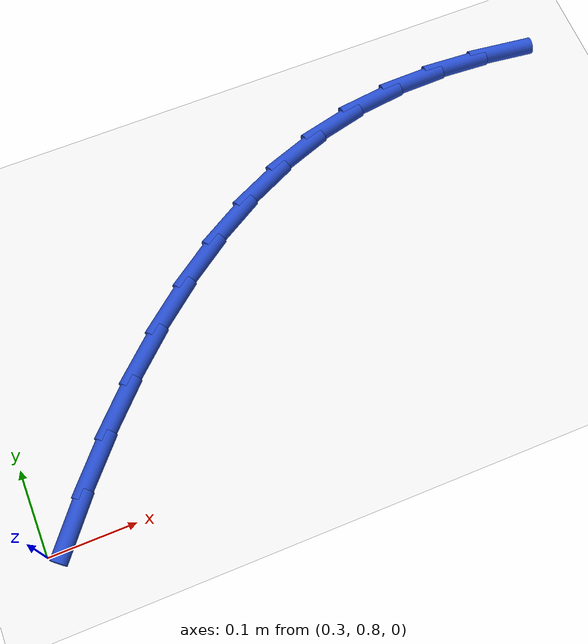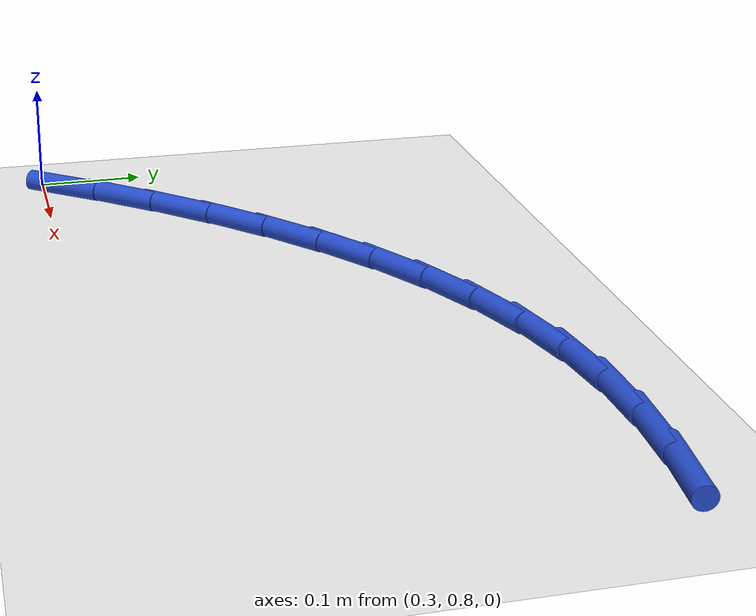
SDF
<sdf version="1.6">
 <world name="default">
  <model name="ground_plane">
   <static>1</static>
   <link name="link">
    <collision name="collision">
     <geometry><plane><normal>0 0 1</normal><size>100 100</size></plane></geometry>
     <surface><friction><ode><mu>100</mu><mu2>50</mu2></ode></friction></surface>
    </collision>
    <visual name="visual">
     <cast_shadows>0</cast_shadows>
     <geometry><plane><normal>0 0 1</normal><size>100 100</size></plane></geometry>
     <material>
      <script><uri>file://media/materials/scripts/gazebo.material</uri><name>Gazebo/WhiteGlow</name></script>
     </material>
    </visual>
   </link>
  </model>
  <model name="line">
   <link name="link_14">
    <pose>0.3353947763024447 0.8197781552401614 0.01 0 1.57 0.8956859882383221</pose>
    <collision name="collision">
     <geometry><cylinder><radius>0.01</radius><length>0.08</length></cylinder></geometry>
    </collision>
    <visual name="visual">
     <material>
      <script><name>Gazebo/Blue</name><uri>file://media/materials/scripts/gazebo.material</uri></script>
     </material>
     <geometry><cylinder><radius>0.01</radius><length>0.08</length></cylinder></geometry>
    </visual>
   </link>
   <link name="link_15">
    <pose>0.37733986549862447 0.8721698307554234 0.01 0 1.57 0.8496569533913054</pose>
    <collision name="collision">
     <geometry><cylinder><radius>0.01</radius><length>0.08</length></cylinder></geometry>
    </collision>
    <visual name="visual">
     <material>
      <script><name>Gazebo/Blue</name><uri>file://media/materials/scripts/gazebo.material</uri></script>
     </material>
     <geometry><cylinder><radius>0.01</radius><length>0.08</length></cylinder></geometry>
    </visual>
   </link>
   <link name="link_16">
    <pose>0.42115517052546286 0.9220117317933934 0.01 0 1.57 0.798631850945454</pose>
    <collision name="collision">
     <geometry><cylinder><radius>0.01</radius><length>0.08</length></cylinder></geometry>
    </collision>
    <visual name="visual">
     <material>
      <script><name>Gazebo/Blue</name><uri>file://media/materials/scripts/gazebo.material</uri></script>
     </material>
     <geometry><cylinder><radius>0.01</radius><length>0.08</length></cylinder></geometry>
    </visual>
   </link>
   <link name="link_17">
    <pose>0.46678057437270665 0.9688609878412413 0.01 0 1.57 0.7417901485718046</pose>
    <collision name="collision">
     <geometry><cylinder><radius>0.01</radius><length>0.08</length></cylinder></geometry>
    </collision>
    <visual name="visual">
     <material>
      <script><name>Gazebo/Blue</name><uri>file://media/materials/scripts/gazebo.material</uri></script>
     </material>
     <geometry><cylinder><radius>0.01</radius><length>0.08</length></cylinder></geometry>
    </visual>
   </link>
   <link name="link_18">
    <pose>0.5141559600301036 1.0122747283861389 0.01 0 1.57 0.678249934664445</pose>
    <collision name="collision">
     <geometry><cylinder><radius>0.01</radius><length>0.08</length></cylinder></geometry>
    </collision>
    <visual name="visual">
     <material>
      <script><name>Gazebo/Blue</name><uri>file://media/materials/scripts/gazebo.material</uri></script>
     </material>
     <geometry><cylinder><radius>0.01</radius><length>0.08</length></cylinder></geometry>
    </visual>
   </link>
   <link name="link_19">
    <pose>0.5632212104874008 1.051810082915257 0.01 0 1.57 0.6071105942000032</pose>
    <collision name="collision">
     <geometry><cylinder><radius>0.01</radius><length>0.08</length></cylinder></geometry>
    </collision>
    <visual name="visual">
     <material>
      <script><name>Gazebo/Blue</name><uri>file://media/materials/scripts/gazebo.material</uri></script>
     </material>
     <geometry><cylinder><radius>0.01</radius><length>0.08</length></cylinder></geometry>
    </visual>
   </link>
   <link name="link_20">
    <pose>0.6139162087343457 1.0870241809157668 0.01 0 1.57 0.5275356670669873</pose>
    <collision name="collision">
     <geometry><cylinder><radius>0.01</radius><length>0.08</length></cylinder></geometry>
    </collision>
    <visual name="visual">
     <material>
      <script><name>Gazebo/Blue</name><uri>file://media/materials/scripts/gazebo.material</uri></script>
     </material>
     <geometry><cylinder><radius>0.01</radius><length>0.08</length></cylinder></geometry>
    </visual>
   </link>
   <link name="link_21">
    <pose>0.6661808377606854 1.1174741518748383 0.01 0 1.57 0.43889052641539156</pose>
    <collision name="collision">
     <geometry><cylinder><radius>0.01</radius><length>0.08</length></cylinder></geometry>
    </collision>
    <visual name="visual">
     <material>
      <script><name>Gazebo/Blue</name><uri>file://media/materials/scripts/gazebo.material</uri></script>
     </material>
     <geometry><cylinder><radius>0.01</radius><length>0.08</length></cylinder></geometry>
    </visual>
   </link>
   <link name="link_22">
    <pose>0.7199549805561675 1.1427171252796438 0.01 0 1.57 0.34094125110064716</pose>
    <collision name="collision">
     <geometry><cylinder><radius>0.01</radius><length>0.08</length></cylinder></geometry>
    </collision>
    <visual name="visual">
     <material>
      <script><name>Gazebo/Blue</name><uri>file://media/materials/scripts/gazebo.material</uri></script>
     </material>
     <geometry><cylinder><radius>0.01</radius><length>0.08</length></cylinder></geometry>
    </visual>
   </link>
   <link name="link_23">
    <pose>0.7751785201105389 1.162310230617353 0.01 0 1.57 0.2340962655598003</pose>
    <collision name="collision">
     <geometry><cylinder><radius>0.01</radius><length>0.08</length></cylinder></geometry>
    </collision>
    <visual name="visual">
     <material>
      <script><name>Gazebo/Blue</name><uri>file://media/materials/scripts/gazebo.material</uri></script>
     </material>
     <geometry><cylinder><radius>0.01</radius><length>0.08</length></cylinder></geometry>
    </visual>
   </link>
   <link name="link_24">
    <pose>0.8317913394135477 1.1758105973751383 0.01 0 1.57 0.1219678929308019</pose>
    <collision name="collision">
     <geometry><cylinder><radius>0.01</radius><length>0.08</length></cylinder></geometry>
    </collision>
    <visual name="visual">
     <material>
      <script><name>Gazebo/Blue</name><uri>file://media/materials/scripts/gazebo.material</uri></script>
     </material>
     <geometry><cylinder><radius>0.01</radius><length>0.08</length></cylinder></geometry>
    </visual>
   </link>
   <link name="link_25">
    <pose>0.8897298676849962 1.182912488870798 0.01 0 1.57 0.021450315125849113</pose>
    <collision name="collision">
     <geometry><cylinder><radius>0.01</radius><length>0.08</length></cylinder></geometry>
    </collision>
    <visual name="visual">
     <material>
      <script><name>Gazebo/Blue</name><uri>file://media/materials/scripts/gazebo.material</uri></script>
     </material>
     <geometry><cylinder><radius>0.01</radius><length>0.08</length></cylinder></geometry>
    </visual>
   </link>
   <link name="link_26">
    <pose>0.9489085745668504 1.1841820855087108 0.01 0 1.57 -0.06051437726943488</pose>
    <collision name="collision">
     <geometry><cylinder><radius>0.01</radius><length>0.08</length></cylinder></geometry>
    </collision>
    <visual name="visual">
     <material>
      <script><name>Gazebo/Blue</name><uri>file://media/materials/scripts/gazebo.material</uri></script>
     </material>
     <geometry><cylinder><radius>0.01</radius><length>0.08</length></cylinder></geometry>
    </visual>
   </link>
   <link name="link_27">
    <pose>1.009233327871854 1.1805271080421467 0.01 0 1.57 -0.12433818342656164</pose>
    <collision name="collision">
     <geometry><cylinder><radius>0.01</radius><length>0.08</length></cylinder></geometry>
    </collision>
    <visual name="visual">
     <material>
      <script><name>Gazebo/Blue</name><uri>file://media/materials/scripts/gazebo.material</uri></script>
     </material>
     <geometry><cylinder><radius>0.01</radius><length>0.08</length></cylinder></geometry>
    </visual>
   </link>
  </model>
 </world>
</sdf>
